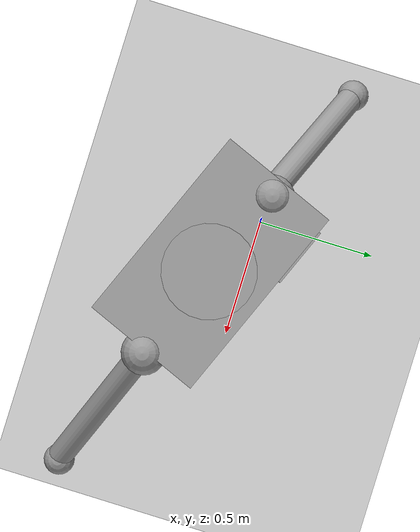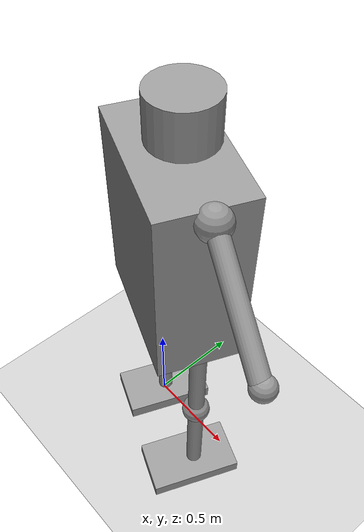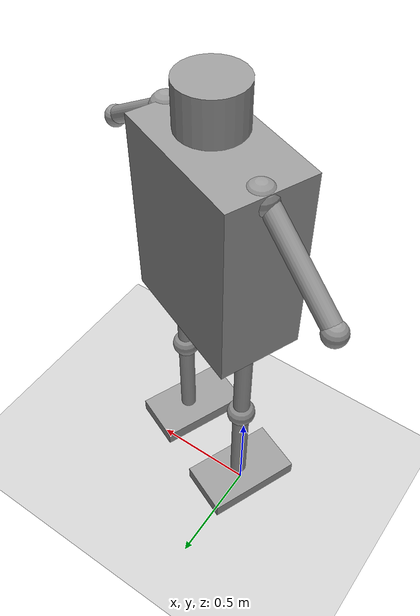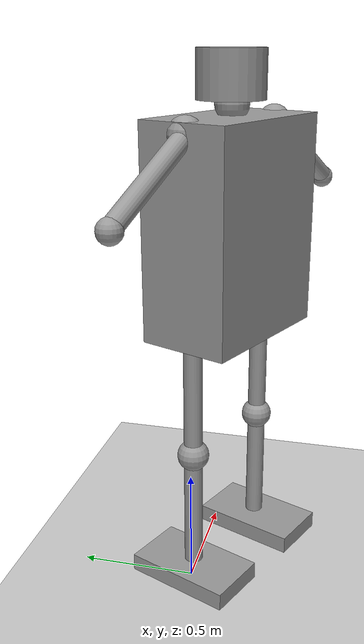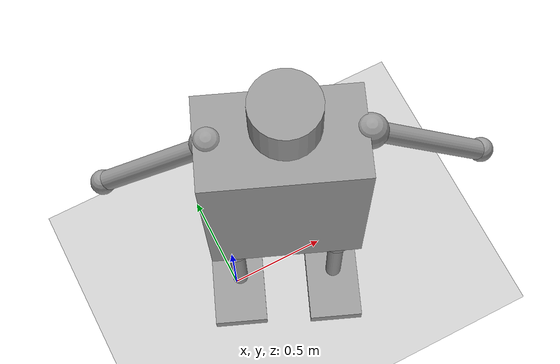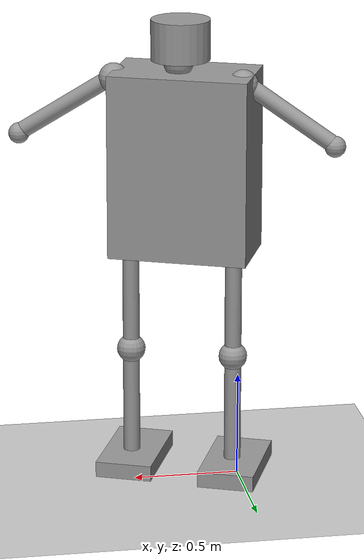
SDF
<sdf version="1.6">
 <world name="default">
  <light name="sun" type="directional">
   <pose>0 0 10 0 -0 0</pose>
   <diffuse>0.8 0.8 0.8 1</diffuse>
   <specular>0.2 0.2 0.2 1</specular>
   <attenuation>
    <range>1000</range>
    <constant>0.9</constant>
    <linear>0.01</linear>
    <quadratic>0.001</quadratic>
   </attenuation>
   <direction>-0.5 0.1 -0.9</direction>
  </light>
  <model name="ground_plane">
   <static>1</static>
   <link name="link">
    <collision name="collision">
     <geometry><plane><normal>0 0 1</normal><size>100 100</size></plane></geometry>
     <surface><friction><ode><mu>100</mu><mu2>50</mu2></ode></friction></surface>
    </collision>
    <visual name="visual">
     <cast_shadows>0</cast_shadows>
     <geometry><plane><normal>0 0 1</normal><size>100 100</size></plane></geometry>
     <material>
      <script><uri>file://media/materials/scripts/gazebo.material</uri><name>Gazebo/Grey</name></script>
     </material>
    </visual>
   </link>
  </model>
  <gravity>0 0 -9.8</gravity>
  <magnetic_field>6e-06 2.3e-05 -4.2e-05</magnetic_field>
  <atmosphere type="adiabatic"/>
  <physics name="default_physics" default="0" type="ode">
   <max_step_size>0.001</max_step_size>
   <real_time_factor>1</real_time_factor>
   <real_time_update_rate>1000</real_time_update_rate>
  </physics>
  <scene><ambient>0.4 0.4 0.4 1</ambient><background>0.7 0.7 0.7 1</background><shadows>1</shadows></scene>
  <spherical_coordinates>
   <surface_model>EARTH_WGS84</surface_model>
   <latitude_deg>0</latitude_deg>
   <longitude_deg>0</longitude_deg>
   <elevation>0</elevation>
   <heading_deg>0</heading_deg>
  </spherical_coordinates>
  <model name="Humanoid">
   <link name="link_1">
    <pose>-0.004889 0.00055 0.039611 0 -0 0</pose>
    <inertial>
     <mass>1</mass>
     <inertia><ixx>0.145833</ixx><ixy>0</ixy><ixz>0</ixz><iyy>0.145833</iyy><iyz>0</iyz><izz>0.125</izz></inertia>
    </inertial>
    <visual name="visual">
     <geometry><cylinder><radius>0.04</radius><length>0.5</length></cylinder></geometry>
     <material>
      <lighting>1</lighting>
      <script><uri>file://media/materials/scripts/gazebo.material</uri><name>Gazebo/Grey</name></script>
      <shader type="pixel"><normal_map>__default__</normal_map></shader>
      <ambient>0.3 0.3 0.3 1</ambient>
      <diffuse>0.7 0.7 0.7 1</diffuse>
      <specular>0.01 0.01 0.01 1</specular>
      <emissive>0 0 0 1</emissive>
     </material>
    </visual>
    <collision name="collision">
     <geometry><cylinder><radius>0.04</radius><length>0.5</length></cylinder></geometry>
     <surface>
      <friction>
       <ode><mu>1</mu><mu2>1</mu2><fdir1>0 0 0</fdir1><slip1>0</slip1><slip2>0</slip2></ode>
       <torsional>
        <coefficient>1</coefficient>
        <patch_radius>0</patch_radius>
        <surface_radius>0</surface_radius>
        <use_patch_radius>1</use_patch_radius>
        <ode><slip>0</slip></ode>
       </torsional>
      </friction>
      <bounce><restitution_coefficient>0</restitution_coefficient><threshold>1e+06</threshold></bounce>
      <contact>
       <collide_without_contact>0</collide_without_contact>
       <collide_without_contact_bitmask>1</collide_without_contact_bitmask>
       <collide_bitmask>1</collide_bitmask>
       <ode>
        <soft_cfm>0</soft_cfm>
        <soft_erp>0.2</soft_erp>
        <kp>1e+13</kp>
        <kd>1</kd>
        <max_vel>0.01</max_vel>
        <min_depth>0</min_depth>
       </ode>
       <bullet>
        <split_impulse>1</split_impulse>
        <split_impulse_penetration_threshold>-0.01</split_impulse_penetration_threshold>
        <soft_cfm>0</soft_cfm>
        <soft_erp>0.2</soft_erp>
        <kp>1e+13</kp>
        <kd>1</kd>
       </bullet>
      </contact>
     </surface>
    </collision>
   </link>
   <link name="link_1_clone">
    <pose>-0.004889 0.00055 0.592596 0 -0 0</pose>
    <inertial>
     <mass>1</mass>
     <inertia><ixx>0.145833</ixx><ixy>0</ixy><ixz>0</ixz><iyy>0.145833</iyy><iyz>0</iyz><izz>0.125</izz></inertia>
    </inertial>
    <visual name="visual">
     <geometry><cylinder><radius>0.04</radius><length>0.5</length></cylinder></geometry>
     <material>
      <lighting>1</lighting>
      <script><uri>file://media/materials/scripts/gazebo.material</uri><name>Gazebo/Grey</name></script>
      <shader type="pixel"><normal_map>__default__</normal_map></shader>
      <ambient>0.3 0.3 0.3 1</ambient>
      <diffuse>0.7 0.7 0.7 1</diffuse>
      <specular>0.01 0.01 0.01 1</specular>
      <emissive>0 0 0 1</emissive>
     </material>
    </visual>
    <collision name="collision">
     <geometry><cylinder><radius>0.04</radius><length>0.5</length></cylinder></geometry>
     <surface>
      <friction>
       <ode><mu>1</mu><mu2>1</mu2><fdir1>0 0 0</fdir1><slip1>0</slip1><slip2>0</slip2></ode>
       <torsional>
        <coefficient>1</coefficient>
        <patch_radius>0</patch_radius>
        <surface_radius>0</surface_radius>
        <use_patch_radius>1</use_patch_radius>
        <ode><slip>0</slip></ode>
       </torsional>
      </friction>
      <bounce><restitution_coefficient>0</restitution_coefficient><threshold>1e+06</threshold></bounce>
      <contact>
       <collide_without_contact>0</collide_without_contact>
       <collide_without_contact_bitmask>1</collide_without_contact_bitmask>
       <collide_bitmask>1</collide_bitmask>
       <ode>
        <soft_cfm>0</soft_cfm>
        <soft_erp>0.2</soft_erp>
        <kp>1e+13</kp>
        <kd>1</kd>
        <max_vel>0.01</max_vel>
        <min_depth>0</min_depth>
       </ode>
       <bullet>
        <split_impulse>1</split_impulse>
        <split_impulse_penetration_threshold>-0.01</split_impulse_penetration_threshold>
        <soft_cfm>0</soft_cfm>
        <soft_erp>0.2</soft_erp>
        <kp>1e+13</kp>
        <kd>1</kd>
       </bullet>
      </contact>
     </surface>
    </collision>
   </link>
   <link name="link_1_clone_0">
    <pose>0.495111 0.00055 0.039611 0 -0 0</pose>
    <inertial>
     <mass>1</mass>
     <inertia><ixx>0.145833</ixx><ixy>0</ixy><ixz>0</ixz><iyy>0.145833</iyy><iyz>0</iyz><izz>0.125</izz></inertia>
    </inertial>
    <visual name="visual">
     <geometry><cylinder><radius>0.04</radius><length>0.5</length></cylinder></geometry>
     <material>
      <lighting>1</lighting>
      <script><uri>file://media/materials/scripts/gazebo.material</uri><name>Gazebo/Grey</name></script>
      <shader type="pixel"><normal_map>__default__</normal_map></shader>
      <ambient>0.3 0.3 0.3 1</ambient>
      <diffuse>0.7 0.7 0.7 1</diffuse>
      <specular>0.01 0.01 0.01 1</specular>
      <emissive>0 0 0 1</emissive>
     </material>
    </visual>
    <collision name="collision">
     <geometry><cylinder><radius>0.04</radius><length>0.5</length></cylinder></geometry>
     <surface>
      <friction>
       <ode><mu>1</mu><mu2>1</mu2><fdir1>0 0 0</fdir1><slip1>0</slip1><slip2>0</slip2></ode>
       <torsional>
        <coefficient>1</coefficient>
        <patch_radius>0</patch_radius>
        <surface_radius>0</surface_radius>
        <use_patch_radius>1</use_patch_radius>
        <ode><slip>0</slip></ode>
       </torsional>
      </friction>
      <bounce><restitution_coefficient>0</restitution_coefficient><threshold>1e+06</threshold></bounce>
      <contact>
       <collide_without_contact>0</collide_without_contact>
       <collide_without_contact_bitmask>1</collide_without_contact_bitmask>
       <collide_bitmask>1</collide_bitmask>
       <ode>
        <soft_cfm>0</soft_cfm>
        <soft_erp>0.2</soft_erp>
        <kp>1e+13</kp>
        <kd>1</kd>
        <max_vel>0.01</max_vel>
        <min_depth>0</min_depth>
       </ode>
       <bullet>
        <split_impulse>1</split_impulse>
        <split_impulse_penetration_threshold>-0.01</split_impulse_penetration_threshold>
        <soft_cfm>0</soft_cfm>
        <soft_erp>0.2</soft_erp>
        <kp>1e+13</kp>
        <kd>1</kd>
       </bullet>
      </contact>
     </surface>
    </collision>
   </link>
   <link name="link_1_clone_clone">
    <pose>0.495111 0.00055 0.592596 0 -0 0</pose>
    <inertial>
     <mass>1</mass>
     <inertia><ixx>0.145833</ixx><ixy>0</ixy><ixz>0</ixz><iyy>0.145833</iyy><iyz>0</iyz><izz>0.125</izz></inertia>
    </inertial>
    <visual name="visual">
     <geometry><cylinder><radius>0.04</radius><length>0.5</length></cylinder></geometry>
     <material>
      <lighting>1</lighting>
      <script><uri>file://media/materials/scripts/gazebo.material</uri><name>Gazebo/Grey</name></script>
      <shader type="pixel"><normal_map>__default__</normal_map></shader>
      <ambient>0.3 0.3 0.3 1</ambient>
      <diffuse>0.7 0.7 0.7 1</diffuse>
      <specular>0.01 0.01 0.01 1</specular>
      <emissive>0 0 0 1</emissive>
     </material>
    </visual>
    <collision name="collision">
     <geometry><cylinder><radius>0.04</radius><length>0.5</length></cylinder></geometry>
     <surface>
      <friction>
       <ode><mu>1</mu><mu2>1</mu2><fdir1>0 0 0</fdir1><slip1>0</slip1><slip2>0</slip2></ode>
       <torsional>
        <coefficient>1</coefficient>
        <patch_radius>0</patch_radius>
        <surface_radius>0</surface_radius>
        <use_patch_radius>1</use_patch_radius>
        <ode><slip>0</slip></ode>
       </torsional>
      </friction>
      <bounce><restitution_coefficient>0</restitution_coefficient><threshold>1e+06</threshold></bounce>
      <contact>
       <collide_without_contact>0</collide_without_contact>
       <collide_without_contact_bitmask>1</collide_without_contact_bitmask>
       <collide_bitmask>1</collide_bitmask>
       <ode>
        <soft_cfm>0</soft_cfm>
        <soft_erp>0.2</soft_erp>
        <kp>1e+13</kp>
        <kd>1</kd>
        <max_vel>0.01</max_vel>
        <min_depth>0</min_depth>
       </ode>
       <bullet>
        <split_impulse>1</split_impulse>
        <split_impulse_penetration_threshold>-0.01</split_impulse_penetration_threshold>
        <soft_cfm>0</soft_cfm>
        <soft_erp>0.2</soft_erp>
        <kp>1e+13</kp>
        <kd>1</kd>
       </bullet>
      </contact>
     </surface>
    </collision>
   </link>
   <link name="link_1_clone_clone_clone">
    <pose>-0.282285 -0.009807 1.50785 0 1 0</pose>
    <inertial>
     <mass>1</mass>
     <inertia><ixx>0.145833</ixx><ixy>0</ixy><ixz>0</ixz><iyy>0.145833</iyy><iyz>0</iyz><izz>0.125</izz></inertia>
     <pose>0 0 0 0 1 0</pose>
    </inertial>
    <visual name="visual">
     <geometry><cylinder><radius>0.04</radius><length>0.5</length></cylinder></geometry>
     <material>
      <lighting>1</lighting>
      <script><uri>file://media/materials/scripts/gazebo.material</uri><name>Gazebo/Grey</name></script>
      <shader type="pixel"><normal_map>__default__</normal_map></shader>
      <ambient>0.3 0.3 0.3 1</ambient>
      <diffuse>0.7 0.7 0.7 1</diffuse>
      <specular>0.01 0.01 0.01 1</specular>
      <emissive>0 0 0 1</emissive>
     </material>
    </visual>
    <collision name="collision">
     <geometry><cylinder><radius>0.04</radius><length>0.5</length></cylinder></geometry>
     <surface>
      <friction>
       <ode><mu>1</mu><mu2>1</mu2><fdir1>0 0 0</fdir1><slip1>0</slip1><slip2>0</slip2></ode>
       <torsional>
        <coefficient>1</coefficient>
        <patch_radius>0</patch_radius>
        <surface_radius>0</surface_radius>
        <use_patch_radius>1</use_patch_radius>
        <ode><slip>0</slip></ode>
       </torsional>
      </friction>
      <bounce><restitution_coefficient>0</restitution_coefficient><threshold>1e+06</threshold></bounce>
      <contact>
       <collide_without_contact>0</collide_without_contact>
       <collide_without_contact_bitmask>1</collide_without_contact_bitmask>
       <collide_bitmask>1</collide_bitmask>
       <ode>
        <soft_cfm>0</soft_cfm>
        <soft_erp>0.2</soft_erp>
        <kp>1e+13</kp>
        <kd>1</kd>
        <max_vel>0.01</max_vel>
        <min_depth>0</min_depth>
       </ode>
       <bullet>
        <split_impulse>1</split_impulse>
        <split_impulse_penetration_threshold>-0.01</split_impulse_penetration_threshold>
        <soft_cfm>0</soft_cfm>
        <soft_erp>0.2</soft_erp>
        <kp>1e+13</kp>
        <kd>1</kd>
       </bullet>
      </contact>
     </surface>
    </collision>
   </link>
   <link name="link_1_clone_clone_clone_clone">
    <pose>0.823257 -0.001053 1.49883 0 -1 0</pose>
    <inertial>
     <mass>1</mass>
     <inertia><ixx>0.145833</ixx><ixy>0</ixy><ixz>0</ixz><iyy>0.145833</iyy><iyz>0</iyz><izz>0.125</izz></inertia>
     <pose>0 0 0 0 -1 0</pose>
    </inertial>
    <visual name="visual">
     <geometry><cylinder><radius>0.04</radius><length>0.5</length></cylinder></geometry>
     <material>
      <lighting>1</lighting>
      <script><uri>file://media/materials/scripts/gazebo.material</uri><name>Gazebo/Grey</name></script>
      <shader type="pixel"><normal_map>__default__</normal_map></shader>
      <ambient>0.3 0.3 0.3 1</ambient>
      <diffuse>0.7 0.7 0.7 1</diffuse>
      <specular>0.01 0.01 0.01 1</specular>
      <emissive>0 0 0 1</emissive>
     </material>
    </visual>
    <collision name="collision">
     <geometry><cylinder><radius>0.04</radius><length>0.5</length></cylinder></geometry>
     <surface>
      <friction>
       <ode><mu>1</mu><mu2>1</mu2><fdir1>0 0 0</fdir1><slip1>0</slip1><slip2>0</slip2></ode>
       <torsional>
        <coefficient>1</coefficient>
        <patch_radius>0</patch_radius>
        <surface_radius>0</surface_radius>
        <use_patch_radius>1</use_patch_radius>
        <ode><slip>0</slip></ode>
       </torsional>
      </friction>
      <bounce><restitution_coefficient>0</restitution_coefficient><threshold>1e+06</threshold></bounce>
      <contact>
       <collide_without_contact>0</collide_without_contact>
       <collide_without_contact_bitmask>1</collide_without_contact_bitmask>
       <collide_bitmask>1</collide_bitmask>
       <ode>
        <soft_cfm>0</soft_cfm>
        <soft_erp>0.2</soft_erp>
        <kp>1e+13</kp>
        <kd>1</kd>
        <max_vel>0.01</max_vel>
        <min_depth>0</min_depth>
       </ode>
       <bullet>
        <split_impulse>1</split_impulse>
        <split_impulse_penetration_threshold>-0.01</split_impulse_penetration_threshold>
        <soft_cfm>0</soft_cfm>
        <soft_erp>0.2</soft_erp>
        <kp>1e+13</kp>
        <kd>1</kd>
       </bullet>
      </contact>
     </surface>
    </collision>
   </link>
   <link name="link_2_clone">
    <pose>-0.004889 0.00055 0.315791 0 -0 0</pose>
    <inertial>
     <mass>2.50998</mass>
     <inertia>
      <ixx>0.00463579</ixx>
      <ixy>0</ixy>
      <ixz>0</ixz>
      <iyy>0.00463579</iyy>
      <iyz>0</iyz>
      <izz>0.00463579</izz>
     </inertia>
    </inertial>
    <visual name="visual">
     <geometry><sphere><radius>0.0679511</radius></sphere></geometry>
     <material>
      <lighting>1</lighting>
      <script><uri>file://media/materials/scripts/gazebo.material</uri><name>Gazebo/Grey</name></script>
      <shader type="pixel"><normal_map>__default__</normal_map></shader>
      <ambient>0.3 0.3 0.3 1</ambient>
      <diffuse>0.7 0.7 0.7 1</diffuse>
      <specular>0.01 0.01 0.01 1</specular>
      <emissive>0 0 0 1</emissive>
     </material>
    </visual>
    <collision name="collision">
     <geometry><sphere><radius>0.067951</radius></sphere></geometry>
     <surface>
      <friction>
       <ode><mu>1</mu><mu2>1</mu2><fdir1>0 0 0</fdir1><slip1>0</slip1><slip2>0</slip2></ode>
       <torsional>
        <coefficient>1</coefficient>
        <patch_radius>0</patch_radius>
        <surface_radius>0</surface_radius>
        <use_patch_radius>1</use_patch_radius>
        <ode><slip>0</slip></ode>
       </torsional>
      </friction>
      <bounce><restitution_coefficient>0</restitution_coefficient><threshold>1e+06</threshold></bounce>
      <contact>
       <collide_without_contact>0</collide_without_contact>
       <collide_without_contact_bitmask>1</collide_without_contact_bitmask>
       <collide_bitmask>1</collide_bitmask>
       <ode>
        <soft_cfm>0</soft_cfm>
        <soft_erp>0.2</soft_erp>
        <kp>1e+13</kp>
        <kd>1</kd>
        <max_vel>0.01</max_vel>
        <min_depth>0</min_depth>
       </ode>
       <bullet>
        <split_impulse>1</split_impulse>
        <split_impulse_penetration_threshold>-0.01</split_impulse_penetration_threshold>
        <soft_cfm>0</soft_cfm>
        <soft_erp>0.2</soft_erp>
        <kp>1e+13</kp>
        <kd>1</kd>
       </bullet>
      </contact>
     </surface>
    </collision>
   </link>
   <link name="link_2_clone_clone">
    <pose>0.495111 0.00055 0.315791 0 -0 0</pose>
    <inertial>
     <mass>2.55375</mass>
     <inertia>
      <ixx>0.00477127</ixx>
      <ixy>0</ixy>
      <ixz>0</ixz>
      <iyy>0.00477127</iyy>
      <iyz>0</iyz>
      <izz>0.00477127</izz>
     </inertia>
    </inertial>
    <visual name="visual">
     <geometry><sphere><radius>0.0683436</radius></sphere></geometry>
     <material>
      <lighting>1</lighting>
      <script><uri>file://media/materials/scripts/gazebo.material</uri><name>Gazebo/Grey</name></script>
      <shader type="pixel"><normal_map>__default__</normal_map></shader>
      <ambient>0.3 0.3 0.3 1</ambient>
      <diffuse>0.7 0.7 0.7 1</diffuse>
      <specular>0.01 0.01 0.01 1</specular>
      <emissive>0 0 0 1</emissive>
     </material>
    </visual>
    <collision name="collision">
     <geometry><sphere><radius>0.068344</radius></sphere></geometry>
     <surface>
      <friction>
       <ode><mu>1</mu><mu2>1</mu2><fdir1>0 0 0</fdir1><slip1>0</slip1><slip2>0</slip2></ode>
       <torsional>
        <coefficient>1</coefficient>
        <patch_radius>0</patch_radius>
        <surface_radius>0</surface_radius>
        <use_patch_radius>1</use_patch_radius>
        <ode><slip>0</slip></ode>
       </torsional>
      </friction>
      <bounce><restitution_coefficient>0</restitution_coefficient><threshold>1e+06</threshold></bounce>
      <contact>
       <collide_without_contact>0</collide_without_contact>
       <collide_without_contact_bitmask>1</collide_without_contact_bitmask>
       <collide_bitmask>1</collide_bitmask>
       <ode>
        <soft_cfm>0</soft_cfm>
        <soft_erp>0.2</soft_erp>
        <kp>1e+13</kp>
        <kd>1</kd>
        <max_vel>0.01</max_vel>
        <min_depth>0</min_depth>
       </ode>
       <bullet>
        <split_impulse>1</split_impulse>
        <split_impulse_penetration_threshold>-0.01</split_impulse_penetration_threshold>
        <soft_cfm>0</soft_cfm>
        <soft_erp>0.2</soft_erp>
        <kp>1e+13</kp>
        <kd>1</kd>
       </bullet>
      </contact>
     </surface>
    </collision>
   </link>
   <link name="link_2_clone_clone_0">
    <pose>-0.477308 -0.009214 1.37844 0 -0 0</pose>
    <inertial>
     <mass>1</mass>
     <inertia><ixx>0.1</ixx><ixy>0</ixy><ixz>0</ixz><iyy>0.1</iyy><iyz>0</iyz><izz>0.1</izz></inertia>
    </inertial>
    <visual name="visual">
     <geometry><sphere><radius>0.05</radius></sphere></geometry>
     <material>
      <lighting>1</lighting>
      <script><uri>file://media/materials/scripts/gazebo.material</uri><name>Gazebo/Grey</name></script>
      <shader type="pixel"><normal_map>__default__</normal_map></shader>
      <ambient>0.3 0.3 0.3 1</ambient>
      <diffuse>0.7 0.7 0.7 1</diffuse>
      <specular>0.01 0.01 0.01 1</specular>
      <emissive>0 0 0 1</emissive>
     </material>
    </visual>
    <collision name="collision">
     <geometry><sphere><radius>0.05</radius></sphere></geometry>
     <surface>
      <friction>
       <ode><mu>1</mu><mu2>1</mu2><fdir1>0 0 0</fdir1><slip1>0</slip1><slip2>0</slip2></ode>
       <torsional>
        <coefficient>1</coefficient>
        <patch_radius>0</patch_radius>
        <surface_radius>0</surface_radius>
        <use_patch_radius>1</use_patch_radius>
        <ode><slip>0</slip></ode>
       </torsional>
      </friction>
      <bounce><restitution_coefficient>0</restitution_coefficient><threshold>1e+06</threshold></bounce>
      <contact>
       <collide_without_contact>0</collide_without_contact>
       <collide_without_contact_bitmask>1</collide_without_contact_bitmask>
       <collide_bitmask>1</collide_bitmask>
       <ode>
        <soft_cfm>0</soft_cfm>
        <soft_erp>0.2</soft_erp>
        <kp>1e+13</kp>
        <kd>1</kd>
        <max_vel>0.01</max_vel>
        <min_depth>0</min_depth>
       </ode>
       <bullet>
        <split_impulse>1</split_impulse>
        <split_impulse_penetration_threshold>-0.01</split_impulse_penetration_threshold>
        <soft_cfm>0</soft_cfm>
        <soft_erp>0.2</soft_erp>
        <kp>1e+13</kp>
        <kd>1</kd>
       </bullet>
      </contact>
     </surface>
    </collision>
   </link>
   <link name="link_2_clone_clone_0_clone">
    <pose>1.03706 0.003787 1.35771 0 -0 0</pose>
    <inertial>
     <mass>1</mass>
     <inertia><ixx>0.1</ixx><ixy>0</ixy><ixz>0</ixz><iyy>0.1</iyy><iyz>0</iyz><izz>0.1</izz></inertia>
    </inertial>
    <visual name="visual">
     <geometry><sphere><radius>0.05</radius></sphere></geometry>
     <material>
      <lighting>1</lighting>
      <script><uri>file://media/materials/scripts/gazebo.material</uri><name>Gazebo/Grey</name></script>
      <shader type="pixel"><normal_map>__default__</normal_map></shader>
      <ambient>0.3 0.3 0.3 1</ambient>
      <diffuse>0.7 0.7 0.7 1</diffuse>
      <specular>0.01 0.01 0.01 1</specular>
      <emissive>0 0 0 1</emissive>
     </material>
    </visual>
    <collision name="collision">
     <geometry><sphere><radius>0.05</radius></sphere></geometry>
     <surface>
      <friction>
       <ode><mu>1</mu><mu2>1</mu2><fdir1>0 0 0</fdir1><slip1>0</slip1><slip2>0</slip2></ode>
       <torsional>
        <coefficient>1</coefficient>
        <patch_radius>0</patch_radius>
        <surface_radius>0</surface_radius>
        <use_patch_radius>1</use_patch_radius>
        <ode><slip>0</slip></ode>
       </torsional>
      </friction>
      <bounce><restitution_coefficient>0</restitution_coefficient><threshold>1e+06</threshold></bounce>
      <contact>
       <collide_without_contact>0</collide_without_contact>
       <collide_without_contact_bitmask>1</collide_without_contact_bitmask>
       <collide_bitmask>1</collide_bitmask>
       <ode>
        <soft_cfm>0</soft_cfm>
        <soft_erp>0.2</soft_erp>
        <kp>1e+13</kp>
        <kd>1</kd>
        <max_vel>0.01</max_vel>
        <min_depth>0</min_depth>
       </ode>
       <bullet>
        <split_impulse>1</split_impulse>
        <split_impulse_penetration_threshold>-0.01</split_impulse_penetration_threshold>
        <soft_cfm>0</soft_cfm>
        <soft_erp>0.2</soft_erp>
        <kp>1e+13</kp>
        <kd>1</kd>
       </bullet>
      </contact>
     </surface>
    </collision>
   </link>
   <link name="link_2_clone_clone_clone">
    <pose>0.57297 0.000563 1.6512 0 -0 0</pose>
    <inertial>
     <mass>1</mass>
     <inertia><ixx>0.1</ixx><ixy>0</ixy><ixz>0</ixz><iyy>0.1</iyy><iyz>0</iyz><izz>0.1</izz></inertia>
    </inertial>
    <visual name="visual">
     <geometry><sphere><radius>0.07</radius></sphere></geometry>
     <material>
      <lighting>1</lighting>
      <script><uri>file://media/materials/scripts/gazebo.material</uri><name>Gazebo/Grey</name></script>
      <shader type="pixel"><normal_map>__default__</normal_map></shader>
      <ambient>0.3 0.3 0.3 1</ambient>
      <diffuse>0.7 0.7 0.7 1</diffuse>
      <specular>0.01 0.01 0.01 1</specular>
      <emissive>0 0 0 1</emissive>
     </material>
    </visual>
    <collision name="collision">
     <geometry><sphere><radius>0.07</radius></sphere></geometry>
     <surface>
      <friction>
       <ode><mu>1</mu><mu2>1</mu2><fdir1>0 0 0</fdir1><slip1>0</slip1><slip2>0</slip2></ode>
       <torsional>
        <coefficient>1</coefficient>
        <patch_radius>0</patch_radius>
        <surface_radius>0</surface_radius>
        <use_patch_radius>1</use_patch_radius>
        <ode><slip>0</slip></ode>
       </torsional>
      </friction>
      <bounce><restitution_coefficient>0</restitution_coefficient><threshold>1e+06</threshold></bounce>
      <contact>
       <collide_without_contact>0</collide_without_contact>
       <collide_without_contact_bitmask>1</collide_without_contact_bitmask>
       <collide_bitmask>1</collide_bitmask>
       <ode>
        <soft_cfm>0</soft_cfm>
        <soft_erp>0.2</soft_erp>
        <kp>1e+13</kp>
        <kd>1</kd>
        <max_vel>0.01</max_vel>
        <min_depth>0</min_depth>
       </ode>
       <bullet>
        <split_impulse>1</split_impulse>
        <split_impulse_penetration_threshold>-0.01</split_impulse_penetration_threshold>
        <soft_cfm>0</soft_cfm>
        <soft_erp>0.2</soft_erp>
        <kp>1e+13</kp>
        <kd>1</kd>
       </bullet>
      </contact>
     </surface>
    </collision>
   </link>
   <link name="link_2_clone_clone_clone_clone">
    <pose>-0.044392 0.00109 1.6512 0 -0 0</pose>
    <inertial>
     <mass>1</mass>
     <inertia><ixx>0.1</ixx><ixy>0</ixy><ixz>0</ixz><iyy>0.1</iyy><iyz>0</iyz><izz>0.1</izz></inertia>
    </inertial>
    <visual name="visual">
     <geometry><sphere><radius>0.07</radius></sphere></geometry>
     <material>
      <lighting>1</lighting>
      <script><uri>file://media/materials/scripts/gazebo.material</uri><name>Gazebo/Grey</name></script>
      <shader type="pixel"><normal_map>__default__</normal_map></shader>
      <ambient>0.3 0.3 0.3 1</ambient>
      <diffuse>0.7 0.7 0.7 1</diffuse>
      <specular>0.01 0.01 0.01 1</specular>
      <emissive>0 0 0 1</emissive>
     </material>
    </visual>
    <collision name="collision">
     <geometry><sphere><radius>0.07</radius></sphere></geometry>
     <surface>
      <friction>
       <ode><mu>1</mu><mu2>1</mu2><fdir1>0 0 0</fdir1><slip1>0</slip1><slip2>0</slip2></ode>
       <torsional>
        <coefficient>1</coefficient>
        <patch_radius>0</patch_radius>
        <surface_radius>0</surface_radius>
        <use_patch_radius>1</use_patch_radius>
        <ode><slip>0</slip></ode>
       </torsional>
      </friction>
      <bounce><restitution_coefficient>0</restitution_coefficient><threshold>1e+06</threshold></bounce>
      <contact>
       <collide_without_contact>0</collide_without_contact>
       <collide_without_contact_bitmask>1</collide_without_contact_bitmask>
       <collide_bitmask>1</collide_bitmask>
       <ode>
        <soft_cfm>0</soft_cfm>
        <soft_erp>0.2</soft_erp>
        <kp>1e+13</kp>
        <kd>1</kd>
        <max_vel>0.01</max_vel>
        <min_depth>0</min_depth>
       </ode>
       <bullet>
        <split_impulse>1</split_impulse>
        <split_impulse_penetration_threshold>-0.01</split_impulse_penetration_threshold>
        <soft_cfm>0</soft_cfm>
        <soft_erp>0.2</soft_erp>
        <kp>1e+13</kp>
        <kd>1</kd>
       </bullet>
      </contact>
     </surface>
    </collision>
   </link>
   <link name="link_2_clone_clone_clone_clone_0">
    <pose>0.261114 0.003938 1.74012 0 -0 0</pose>
    <inertial>
     <mass>1</mass>
     <inertia><ixx>0.1</ixx><ixy>0</ixy><ixz>0</ixz><iyy>0.1</iyy><iyz>0</iyz><izz>0.1</izz></inertia>
    </inertial>
    <visual name="visual">
     <geometry><sphere><radius>0.07</radius></sphere></geometry>
     <material>
      <lighting>1</lighting>
      <script><uri>file://media/materials/scripts/gazebo.material</uri><name>Gazebo/Grey</name></script>
      <shader type="pixel"><normal_map>__default__</normal_map></shader>
      <ambient>0.3 0.3 0.3 1</ambient>
      <diffuse>0.7 0.7 0.7 1</diffuse>
      <specular>0.01 0.01 0.01 1</specular>
      <emissive>0 0 0 1</emissive>
     </material>
    </visual>
    <collision name="collision">
     <geometry><sphere><radius>0.07</radius></sphere></geometry>
     <surface>
      <friction>
       <ode><mu>1</mu><mu2>1</mu2><fdir1>0 0 0</fdir1><slip1>0</slip1><slip2>0</slip2></ode>
       <torsional>
        <coefficient>1</coefficient>
        <patch_radius>0</patch_radius>
        <surface_radius>0</surface_radius>
        <use_patch_radius>1</use_patch_radius>
        <ode><slip>0</slip></ode>
       </torsional>
      </friction>
      <bounce><restitution_coefficient>0</restitution_coefficient><threshold>1e+06</threshold></bounce>
      <contact>
       <collide_without_contact>0</collide_without_contact>
       <collide_without_contact_bitmask>1</collide_without_contact_bitmask>
       <collide_bitmask>1</collide_bitmask>
       <ode>
        <soft_cfm>0</soft_cfm>
        <soft_erp>0.2</soft_erp>
        <kp>1e+13</kp>
        <kd>1</kd>
        <max_vel>0.01</max_vel>
        <min_depth>0</min_depth>
       </ode>
       <bullet>
        <split_impulse>1</split_impulse>
        <split_impulse_penetration_threshold>-0.01</split_impulse_penetration_threshold>
        <soft_cfm>0</soft_cfm>
        <soft_erp>0.2</soft_erp>
        <kp>1e+13</kp>
        <kd>1</kd>
       </bullet>
      </contact>
     </surface>
    </collision>
   </link>
   <link name="link_3">
    <pose>0.251631 0.003401 1.8507 0 -0 0</pose>
    <inertial>
     <mass>0.0147289</mass>
     <inertia>
      <ixx>0.000115704</ixx>
      <ixy>0</ixy>
      <ixz>0</ixz>
      <iyy>0.000115704</iyy>
      <iyz>0</iyz>
      <izz>0.000142589</izz>
     </inertia>
    </inertial>
    <visual name="visual">
     <geometry><cylinder><radius>0.139147</radius><length>0.190215</length></cylinder></geometry>
     <material>
      <lighting>1</lighting>
      <script><uri>file://media/materials/scripts/gazebo.material</uri><name>Gazebo/Grey</name></script>
      <shader type="pixel"><normal_map>__default__</normal_map></shader>
      <ambient>0.3 0.3 0.3 1</ambient>
      <diffuse>0.7 0.7 0.7 1</diffuse>
      <specular>0.01 0.01 0.01 1</specular>
      <emissive>0 0 0 1</emissive>
     </material>
    </visual>
    <collision name="collision">
     <geometry><cylinder><radius>0.139147</radius><length>0.190215</length></cylinder></geometry>
     <surface>
      <friction>
       <ode><mu>1</mu><mu2>1</mu2><fdir1>0 0 0</fdir1><slip1>0</slip1><slip2>0</slip2></ode>
       <torsional>
        <coefficient>1</coefficient>
        <patch_radius>0</patch_radius>
        <surface_radius>0</surface_radius>
        <use_patch_radius>1</use_patch_radius>
        <ode><slip>0</slip></ode>
       </torsional>
      </friction>
      <bounce><restitution_coefficient>0</restitution_coefficient><threshold>1e+06</threshold></bounce>
      <contact>
       <collide_without_contact>0</collide_without_contact>
       <collide_without_contact_bitmask>1</collide_without_contact_bitmask>
       <collide_bitmask>1</collide_bitmask>
       <ode>
        <soft_cfm>0</soft_cfm>
        <soft_erp>0.2</soft_erp>
        <kp>1e+13</kp>
        <kd>1</kd>
        <max_vel>0.01</max_vel>
        <min_depth>0</min_depth>
       </ode>
       <bullet>
        <split_impulse>1</split_impulse>
        <split_impulse_penetration_threshold>-0.01</split_impulse_penetration_threshold>
        <soft_cfm>0</soft_cfm>
        <soft_erp>0.2</soft_erp>
        <kp>1e+13</kp>
        <kd>1</kd>
       </bullet>
      </contact>
     </surface>
    </collision>
   </link>
   <link name="link_4">
    <pose>0.233213 -0.013681 1.25958 0 -0 0</pose>
    <inertial>
     <mass>0.225248</mass>
     <inertia>
      <ixx>0.0173204</ixx>
      <ixy>0</ixy>
      <ixz>0</ixz>
      <iyy>0.022689</iyy>
      <iyz>0</iyz>
      <izz>0.0110193</izz>
     </inertia>
    </inertial>
    <visual name="visual">
     <geometry><box><size>0.660705 0.387971 0.87876</size></box></geometry>
     <material>
      <lighting>1</lighting>
      <script><uri>file://media/materials/scripts/gazebo.material</uri><name>Gazebo/Grey</name></script>
      <shader type="pixel"/>
      <ambient>0.3 0.3 0.3 1</ambient>
      <diffuse>0.7 0.7 0.7 1</diffuse>
      <specular>0.01 0.01 0.01 1</specular>
      <emissive>0 0 0 1</emissive>
     </material>
    </visual>
    <collision name="collision">
     <geometry><box><size>0.660705 0.387971 0.87876</size></box></geometry>
     <surface>
      <friction>
       <ode><mu>1</mu><mu2>1</mu2><fdir1>0 0 0</fdir1><slip1>0</slip1><slip2>0</slip2></ode>
       <torsional>
        <coefficient>1</coefficient>
        <patch_radius>0</patch_radius>
        <surface_radius>0</surface_radius>
        <use_patch_radius>1</use_patch_radius>
        <ode><slip>0</slip></ode>
       </torsional>
      </friction>
      <bounce><restitution_coefficient>0</restitution_coefficient><threshold>1e+06</threshold></bounce>
      <contact>
       <collide_without_contact>0</collide_without_contact>
       <collide_without_contact_bitmask>1</collide_without_contact_bitmask>
       <collide_bitmask>1</collide_bitmask>
       <ode>
        <soft_cfm>0</soft_cfm>
        <soft_erp>0.2</soft_erp>
        <kp>1e+13</kp>
        <kd>1</kd>
        <max_vel>0.01</max_vel>
        <min_depth>0</min_depth>
       </ode>
       <bullet>
        <split_impulse>1</split_impulse>
        <split_impulse_penetration_threshold>-0.01</split_impulse_penetration_threshold>
        <soft_cfm>0</soft_cfm>
        <soft_erp>0.2</soft_erp>
        <kp>1e+13</kp>
        <kd>1</kd>
       </bullet>
      </contact>
     </surface>
    </collision>
   </link>
   <link name="link_5">
    <pose>0.486745 -0.024447 -0.242806 0 -0 0</pose>
    <inertial>
     <mass>0.00978857</mass>
     <inertia>
      <ixx>0.000188259</ixx>
      <ixy>0</ixy>
      <ixz>0</ixz>
      <iyy>6.4901e-05</iyy>
      <iyz>0</iyz>
      <izz>0.000243743</izz>
     </inertia>
    </inertial>
    <visual name="visual">
     <geometry><box><size>0.271645 0.474361 0.075977</size></box></geometry>
     <material>
      <lighting>1</lighting>
      <script><uri>file://media/materials/scripts/gazebo.material</uri><name>Gazebo/Grey</name></script>
      <shader type="pixel"><normal_map>__default__</normal_map></shader>
      <ambient>0.3 0.3 0.3 1</ambient>
      <diffuse>0.7 0.7 0.7 1</diffuse>
      <specular>0.01 0.01 0.01 1</specular>
      <emissive>0 0 0 1</emissive>
     </material>
    </visual>
    <collision name="collision">
     <geometry><box><size>0.271645 0.474361 0.075977</size></box></geometry>
     <surface>
      <friction>
       <ode><mu>1</mu><mu2>1</mu2><fdir1>0 0 0</fdir1><slip1>0</slip1><slip2>0</slip2></ode>
       <torsional>
        <coefficient>1</coefficient>
        <patch_radius>0</patch_radius>
        <surface_radius>0</surface_radius>
        <use_patch_radius>1</use_patch_radius>
        <ode><slip>0</slip></ode>
       </torsional>
      </friction>
      <bounce><restitution_coefficient>0</restitution_coefficient><threshold>1e+06</threshold></bounce>
      <contact>
       <collide_without_contact>0</collide_without_contact>
       <collide_without_contact_bitmask>1</collide_without_contact_bitmask>
       <collide_bitmask>1</collide_bitmask>
       <ode>
        <soft_cfm>0</soft_cfm>
        <soft_erp>0.2</soft_erp>
        <kp>1e+13</kp>
        <kd>1</kd>
        <max_vel>0.01</max_vel>
        <min_depth>0</min_depth>
       </ode>
       <bullet>
        <split_impulse>1</split_impulse>
        <split_impulse_penetration_threshold>-0.01</split_impulse_penetration_threshold>
        <soft_cfm>0</soft_cfm>
        <soft_erp>0.2</soft_erp>
        <kp>1e+13</kp>
        <kd>1</kd>
       </bullet>
      </contact>
     </surface>
    </collision>
   </link>
   <link name="link_5_clone">
    <pose>-0.016885 -0.009146 -0.242806 0 -0 0</pose>
    <inertial>
     <mass>0.00978857</mass>
     <inertia>
      <ixx>0.000188259</ixx>
      <ixy>0</ixy>
      <ixz>0</ixz>
      <iyy>6.4901e-05</iyy>
      <iyz>0</iyz>
      <izz>0.000243743</izz>
     </inertia>
    </inertial>
    <visual name="visual">
     <geometry><box><size>0.271645 0.474361 0.075977</size></box></geometry>
     <material>
      <lighting>1</lighting>
      <script><uri>file://media/materials/scripts/gazebo.material</uri><name>Gazebo/Grey</name></script>
      <shader type="pixel"><normal_map>__default__</normal_map></shader>
      <ambient>0.3 0.3 0.3 1</ambient>
      <diffuse>0.7 0.7 0.7 1</diffuse>
      <specular>0.01 0.01 0.01 1</specular>
      <emissive>0 0 0 1</emissive>
     </material>
    </visual>
    <collision name="collision">
     <geometry><box><size>0.271645 0.474361 0.075977</size></box></geometry>
     <surface>
      <friction>
       <ode><mu>1</mu><mu2>1</mu2><fdir1>0 0 0</fdir1><slip1>0</slip1><slip2>0</slip2></ode>
       <torsional>
        <coefficient>1</coefficient>
        <patch_radius>0</patch_radius>
        <surface_radius>0</surface_radius>
        <use_patch_radius>1</use_patch_radius>
        <ode><slip>0</slip></ode>
       </torsional>
      </friction>
      <bounce><restitution_coefficient>0</restitution_coefficient><threshold>1e+06</threshold></bounce>
      <contact>
       <collide_without_contact>0</collide_without_contact>
       <collide_without_contact_bitmask>1</collide_without_contact_bitmask>
       <collide_bitmask>1</collide_bitmask>
       <ode>
        <soft_cfm>0</soft_cfm>
        <soft_erp>0.2</soft_erp>
        <kp>1e+13</kp>
        <kd>1</kd>
        <max_vel>0.01</max_vel>
        <min_depth>0</min_depth>
       </ode>
       <bullet>
        <split_impulse>1</split_impulse>
        <split_impulse_penetration_threshold>-0.01</split_impulse_penetration_threshold>
        <soft_cfm>0</soft_cfm>
        <soft_erp>0.2</soft_erp>
        <kp>1e+13</kp>
        <kd>1</kd>
       </bullet>
      </contact>
     </surface>
    </collision>
   </link>
   <joint name="link_1_JOINT_0" type="fixed">
    <parent>link_1</parent>
    <child>link_2_clone</child>
    <physics>
     <ode><limit><cfm>0</cfm><erp>0.2</erp></limit><suspension><cfm>0</cfm><erp>0.2</erp></suspension></ode>
    </physics>
   </joint>
   <joint name="link_1_JOINT_23" type="fixed">
    <parent>link_1</parent>
    <child>link_5_clone</child>
    <physics>
     <ode><limit><cfm>0</cfm><erp>0.2</erp></limit><suspension><cfm>0</cfm><erp>0.2</erp></suspension></ode>
    </physics>
   </joint>
   <joint name="link_1_clone_0_JOINT_24" type="fixed">
    <parent>link_1_clone_0</parent>
    <child>link_5</child>
    <physics>
     <ode><limit><cfm>0</cfm><erp>0.2</erp></limit><suspension><cfm>0</cfm><erp>0.2</erp></suspension></ode>
    </physics>
   </joint>
   <joint name="link_1_clone_0_JOINT_4" type="fixed">
    <parent>link_1_clone_0</parent>
    <child>link_2_clone_clone</child>
    <physics>
     <ode><limit><cfm>0</cfm><erp>0.2</erp></limit><suspension><cfm>0</cfm><erp>0.2</erp></suspension></ode>
    </physics>
   </joint>
   <joint name="link_1_clone_clone_clone_JOINT_13" type="fixed">
    <parent>link_1_clone_clone_clone</parent>
    <child>link_2_clone_clone_0</child>
    <physics>
     <ode><limit><cfm>0</cfm><erp>0.2</erp></limit><suspension><cfm>0</cfm><erp>0.2</erp></suspension></ode>
    </physics>
   </joint>
   <joint name="link_1_clone_clone_clone_clone_JOINT_14" type="fixed">
    <parent>link_1_clone_clone_clone_clone</parent>
    <child>link_2_clone_clone_0_clone</child>
    <physics>
     <ode><limit><cfm>0</cfm><erp>0.2</erp></limit><suspension><cfm>0</cfm><erp>0.2</erp></suspension></ode>
    </physics>
   </joint>
   <joint name="link_2_clone_JOINT_1" type="fixed">
    <parent>link_2_clone</parent>
    <child>link_1_clone</child>
    <physics>
     <ode><limit><cfm>0</cfm><erp>0.2</erp></limit><suspension><cfm>0</cfm><erp>0.2</erp></suspension></ode>
    </physics>
   </joint>
   <joint name="link_2_clone_clone_JOINT_5" type="fixed">
    <parent>link_2_clone_clone</parent>
    <child>link_1_clone_clone</child>
    <physics>
     <ode><limit><cfm>0</cfm><erp>0.2</erp></limit><suspension><cfm>0</cfm><erp>0.2</erp></suspension></ode>
    </physics>
   </joint>
   <joint name="link_2_clone_clone_clone_JOINT_12" type="fixed">
    <parent>link_2_clone_clone_clone</parent>
    <child>link_1_clone_clone_clone_clone</child>
    <physics>
     <ode><limit><cfm>0</cfm><erp>0.2</erp></limit><suspension><cfm>0</cfm><erp>0.2</erp></suspension></ode>
    </physics>
   </joint>
   <joint name="link_2_clone_clone_clone_clone_0_JOINT_17" type="fixed">
    <parent>link_2_clone_clone_clone_clone_0</parent>
    <child>link_3</child>
    <physics>
     <ode><limit><cfm>0</cfm><erp>0.2</erp></limit><suspension><cfm>0</cfm><erp>0.2</erp></suspension></ode>
    </physics>
   </joint>
   <joint name="link_2_clone_clone_clone_clone_JOINT_11" type="fixed">
    <parent>link_2_clone_clone_clone_clone</parent>
    <child>link_1_clone_clone_clone</child>
    <physics>
     <ode><limit><cfm>0</cfm><erp>0.2</erp></limit><suspension><cfm>0</cfm><erp>0.2</erp></suspension></ode>
    </physics>
   </joint>
   <joint name="link_4_JOINT_18" type="fixed">
    <parent>link_4</parent>
    <child>link_1_clone</child>
    <physics>
     <ode><limit><cfm>0</cfm><erp>0.2</erp></limit><suspension><cfm>0</cfm><erp>0.2</erp></suspension></ode>
    </physics>
   </joint>
   <joint name="link_4_JOINT_19" type="fixed">
    <parent>link_4</parent>
    <child>link_1_clone_clone</child>
    <physics>
     <ode><limit><cfm>0</cfm><erp>0.2</erp></limit><suspension><cfm>0</cfm><erp>0.2</erp></suspension></ode>
    </physics>
   </joint>
   <joint name="link_4_JOINT_20" type="fixed">
    <parent>link_4</parent>
    <child>link_2_clone_clone_clone_clone</child>
    <physics>
     <ode><limit><cfm>0</cfm><erp>0.2</erp></limit><suspension><cfm>0</cfm><erp>0.2</erp></suspension></ode>
    </physics>
   </joint>
   <joint name="link_4_JOINT_21" type="fixed">
    <parent>link_4</parent>
    <child>link_2_clone_clone_clone</child>
    <physics>
     <ode><limit><cfm>0</cfm><erp>0.2</erp></limit><suspension><cfm>0</cfm><erp>0.2</erp></suspension></ode>
    </physics>
   </joint>
   <joint name="link_4_JOINT_22" type="fixed">
    <parent>link_4</parent>
    <child>link_2_clone_clone_clone_clone_0</child>
    <physics>
     <ode><limit><cfm>0</cfm><erp>0.2</erp></limit><suspension><cfm>0</cfm><erp>0.2</erp></suspension></ode>
    </physics>
   </joint>
   <static>0</static>
   <pose>0.027908 -0.008028 0.280544 4e-05 0.000231 -0.387837</pose>
  </model>
 </world>
</sdf>
